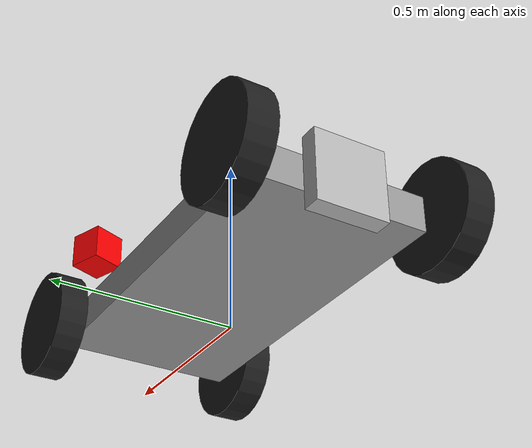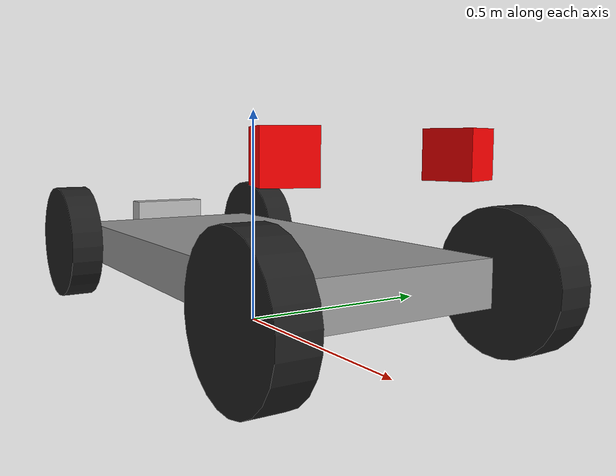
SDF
<?xml version="1.0" ?>
<sdf version="1.4">
  <model name="auto_trax_car">
    <link name="chassis">
      <pose>0 0 0.15  0 0 0</pose>
      <inertial>
        <pose>0 0 0  0 0 0</pose>
        <mass>5</mass>
        <inertia>
          <ixx>0.21666666666666667</ixx>
          <iyy>0.8416666666666667</iyy>
          <izz>1.0416666666666667</izz>
          <ixy>0</ixy>
          <ixz>0</ixz>
          <iyz>0</iyz>
        </inertia>
      </inertial>
      <collision name="collision">
        <geometry>
          <box>
            <size>1.0 0.5 0.1</size>
          </box>
        </geometry>
      </collision>
      <visual name="visual">
        <cast_shadows>false</cast_shadows>
        <geometry>
          <box>
            <size>1.0 0.5 0.1</size>
          </box>
        </geometry>
        <material>
          <script>
            <uri>file://media/materials/scripts/gazebo.material</uri>
            <name>Gazebo/Grey</name>
          </script>
        </material>
      </visual>
    </link>

    <link name="wheel_front_left">
      <pose>0.5 0.298 0.15  -1.5707963267948966 -0.08726646259971647 0</pose>
      <inertial>
        <mass>0.5</mass>
        <inertia>
          <ixx>0.0030791666666666667</ixx>
          <iyy>0.0030791666666666667</iyy>
          <izz>0.005625</izz>
          <ixy>0</ixy>
          <ixz>0</ixz>
          <iyz>0</iyz>
        </inertia>
      </inertial>
      <collision name="collision">
        <geometry>
          <cylinder>
            <radius>0.15</radius>
            <length>0.08</length>
          </cylinder>
        </geometry>
      </collision>
      <visual name="visual">
        <cast_shadows>false</cast_shadows>
        <geometry>
          <cylinder>
            <radius>0.15</radius>
            <length>0.08</length>
          </cylinder>
        </geometry>
        <material>
          <script>
            <uri>file://media/materials/scripts/gazebo.material</uri>
            <name>Gazebo/Black</name>
          </script>
        </material>
      </visual>
    </link>

    <joint name="wheel_front_left_steer_spin" type="fixed">
      <parent>chassis</parent>
      <child>wheel_front_left</child>
      <axis>
        <xyz>0 0 -1</xyz>
      </axis>
    </joint>

    <link name="wheel_front_right">
      <pose>0.5 -0.298 0.15  -1.5707963267948966 -0.08726646259971647 0</pose>
      <inertial>
        <mass>0.5</mass>
        <inertia>
          <ixx>0.0030791666666666667</ixx>
          <iyy>0.0030791666666666667</iyy>
          <izz>0.005625</izz>
          <ixy>0</ixy>
          <ixz>0</ixz>
          <iyz>0</iyz>
        </inertia>
      </inertial>
      <collision name="collision">
        <geometry>
          <cylinder>
            <radius>0.15</radius>
            <length>0.08</length>
          </cylinder>
        </geometry>
      </collision>
      <visual name="visual">
        <cast_shadows>false</cast_shadows>
        <geometry>
          <cylinder>
            <radius>0.15</radius>
            <length>0.08</length>
          </cylinder>
        </geometry>
        <material>
          <script>
            <uri>file://media/materials/scripts/gazebo.material</uri>
            <name>Gazebo/Black</name>
          </script>
        </material>
      </visual>
    </link>

    <joint name="wheel_front_right_steer_spin" type="fixed">
      <parent>chassis</parent>
      <child>wheel_front_right</child>
      <axis>
        <xyz>0 0 1</xyz>
      </axis>
    </joint>

    <link name="wheel_rear_left">
      <pose>-0.5 0.298 0.15  -1.5707963267948966 0 0</pose>
      <inertial>
        <mass>0.5</mass>
        <inertia>
          <ixx>0.0030791666666666667</ixx>
          <iyy>0.0030791666666666667</iyy>
          <izz>0.005625</izz>
          <ixy>0</ixy>
          <ixz>0</ixz>
          <iyz>0</iyz>
        </inertia>
      </inertial>
      <collision name="collision">
        <geometry>
          <cylinder>
            <radius>0.15</radius>
            <length>0.08</length>
          </cylinder>
        </geometry>
      </collision>
      <visual name="visual">
        <cast_shadows>false</cast_shadows>
        <geometry>
          <cylinder>
            <radius>0.15</radius>
            <length>0.08</length>
          </cylinder>
        </geometry>
        <material>
          <script>
            <uri>file://media/materials/scripts/gazebo.material</uri>
            <name>Gazebo/Black</name>
          </script>
        </material>
      </visual>
    </link>

    <joint name="wheel_rear_left_spin" type="fixed">
      <parent>chassis</parent>
      <child>wheel_rear_left</child>
      <axis>
        <xyz>0 0 -1</xyz>
      </axis>
    </joint>

    <link name="wheel_rear_right">
      <pose>-0.5 -0.298 0.15  -1.5707963267948966 0 0</pose>
      <inertial>
        <mass>0.5</mass>
        <inertia>
          <ixx>0.0030791666666666667</ixx>
          <iyy>0.0030791666666666667</iyy>
          <izz>0.005625</izz>
          <ixy>0</ixy>
          <ixz>0</ixz>
          <iyz>0</iyz>
        </inertia>
      </inertial>
      <collision name="collision">
        <geometry>
          <cylinder>
            <radius>0.15</radius>
            <length>0.08</length>
          </cylinder>
        </geometry>
      </collision>
      <visual name="visual">
        <cast_shadows>false</cast_shadows>
        <geometry>
          <cylinder>
            <radius>0.15</radius>
            <length>0.08</length>
          </cylinder>
        </geometry>
        <material>
          <script>
            <uri>file://media/materials/scripts/gazebo.material</uri>
            <name>Gazebo/Black</name>
          </script>
        </material>
      </visual>
    </link>

    <joint name="wheel_rear_right_spin" type="fixed">
      <parent>chassis</parent>
      <child>wheel_rear_right</child>
      <axis>
        <xyz>0 0 1</xyz>
      </axis>
    </joint>

    <link name="left_kinect_link">
      <pose>0.45 0.2 0.4 0 0 0.349066</pose>
      <collision name="collision">
        <geometry>
          <box>
            <size>0.1 0.1 0.1</size>
          </box>
        </geometry>
      </collision>
      <visual name="visual">
        <cast_shadows>false</cast_shadows>
        <geometry>
          <box>
            <size>0.1 0.1 0.1</size>
          </box>
        </geometry>
        <material name="orange">
          <ambient>1 0 0 1</ambient>
          <diffuse>1 0 0 1</diffuse>
          <specular>0.1 0.1 0.1 1</specular>
        </material>
      </visual>
      <sensor type="ray" name="ray_left">
	<pose>0 0 0 0 0 0</pose>
        <update_rate>35.0</update_rate>
	<visualize>true</visualize>
        <ray name="laser_scan_left">
          <scan>
            <horizontal>
              <samples>360</samples>
              <resolution>1</resolution>
              <min_angle>-0.4974188</min_angle>
              <max_angle>0.4974188</max_angle>
            </horizontal>
          </scan>
          <range>
            <min>0.3</min>
            <max>2.0</max>
            <resolution>0.01</resolution>
          </range>
        </ray>
        <plugin name="laser_scan_controller_left" filename="libgazebo_ros_laser.so">
          <frameName>camera_left</frameName>
          <topicName>scan</topicName>
        </plugin>
      </sensor>
      <sensor type="camera" name="camera_left">
	<pose>0 0 0 0 0 0</pose>
        <update_rate>30.0</update_rate>
        <camera name="left_camera">
	  <pose>0 0 0 0 0 0</pose>
          <horizontal_fov>1.55</horizontal_fov>
          <image>
            <width>640</width>
            <height>480</height>
            <format>L8</format>
          </image>
          <clip>
            <near>0.02</near>
            <far>50</far>
          </clip>
	  <noise>
            <type>gaussian</type>
            <mean>0.0</mean>
            <stddev>0.007</stddev>
          </noise>
        </camera>
        <plugin name="left_camera_controller" filename="libgazebo_ros_camera.so">
          <alwaysOn>true</alwaysOn>
          <updateRate>30.0</updateRate>
          <cameraName>gazebo_left_camera</cameraName>
          <imageTopicName>image_raw</imageTopicName>
          <cameraInfoTopicName>camera_info</cameraInfoTopicName>
          <hackBaseline>0.07</hackBaseline>
          <frameName>left_kinect_link</frameName>
        </plugin>
      </sensor>
    </link>

    <joint name="kinect_joint_left" type="fixed">
      <parent>chassis</parent>
      <child>left_kinect_link</child>
      <axis>
        <xyz>0 0 1</xyz>
      </axis>
    </joint>

    <link name="right_kinect_link">
      <pose>0.45 -0.2 0.4 0 0 -0.349066</pose>
      <collision name="collision">
        <geometry>
          <box>
            <size>0.1 0.1 0.1</size>
          </box>
        </geometry>
      </collision>
      <visual name="visual">
        <cast_shadows>false</cast_shadows>
        <geometry>
          <box>
            <size>0.1 0.1 0.1</size>
          </box>
        </geometry>
        <material name="orange">
          <ambient>1 0 0 1</ambient>
          <diffuse>1 0 0 1</diffuse>
          <specular>0.1 0.1 0.1 1</specular>
        </material>
      </visual>
      <sensor type="ray" name="ray_right">
	<pose>0 0 0 0 0 0</pose>
        <update_rate>35.0</update_rate>
	<visualize>true</visualize>
        <ray name="laser_scan_right">
          <scan>
            <horizontal>
              <samples>360</samples>
              <resolution>1</resolution>
              <min_angle>-0.4974188</min_angle>
              <max_angle>0.4974188</max_angle>
            </horizontal>
          </scan>
          <range>
            <min>0.3</min>
            <max>2.0</max>
            <resolution>0.01</resolution>
          </range>
        </ray>
        <plugin name="laser_scan_controller_right" filename="libgazebo_ros_laser.so">
          <frameName>camera_right</frameName>
          <topicName>scan</topicName>
        </plugin>
      </sensor>
      <sensor type="camera" name="camera_right">
	<pose>0 0 0 0 0 0</pose>
        <update_rate>30.0</update_rate>
        <camera name="right_camera">
	  <pose>0 0 0 0 0 0</pose>
          <horizontal_fov>1.55</horizontal_fov>
          <image>
            <width>640</width>
            <height>480</height>
            <format>L8</format>
          </image>
          <clip>
            <near>0.02</near>
            <far>50</far>
          </clip>
	  <noise>
            <type>gaussian</type>
            <mean>0.0</mean>
            <stddev>0.007</stddev>
          </noise>
        </camera>
        <plugin name="right_camera_controller" filename="libgazebo_ros_camera.so">
          <alwaysOn>true</alwaysOn>
          <updateRate>30.0</updateRate>
          <cameraName>gazebo_right_camera</cameraName>
          <imageTopicName>image_raw</imageTopicName>
          <cameraInfoTopicName>camera_info</cameraInfoTopicName>
          <hackBaseline>0.07</hackBaseline>
          <frameName>right_kinect_link</frameName>
        </plugin>
      </sensor>
    </link>

    <joint name="kinect_joint_right" type="fixed">
      <parent>chassis</parent>
      <child>right_kinect_link</child>
      <axis>
        <xyz>0 0 1</xyz>
      </axis>
    </joint>

    <link name="tag_link">
      <pose>-0.525 0 0.15 0 -1.57079632679 0</pose>
      <collision name="collision">
        <geometry>
          <box>
            <size>0.2 0.2 0.05</size>
          </box>
        </geometry>
      </collision>
      <visual name="visual">
        <cast_shadows>false</cast_shadows>
        <geometry>
          <box>
            <size>0.2 0.2 0.05</size>
          </box>
        </geometry>
        <material>
          <script>
            <uri>model://april_tag/materials/scripts</uri>
            <uri>model://april_tag/materials/textures</uri>
            <name>April_Tag/Tag1</name>
          </script>
        </material>
      </visual>
    </link>

    <joint name="tag_joint" type="fixed">
      <parent>chassis</parent>
      <child>tag_link</child>
      <axis>
        <xyz>1 0 0</xyz>
      </axis>
    </joint>

    <plugin name="move_cart" filename="libmove_cart.so"/>
  </model>
</sdf>
